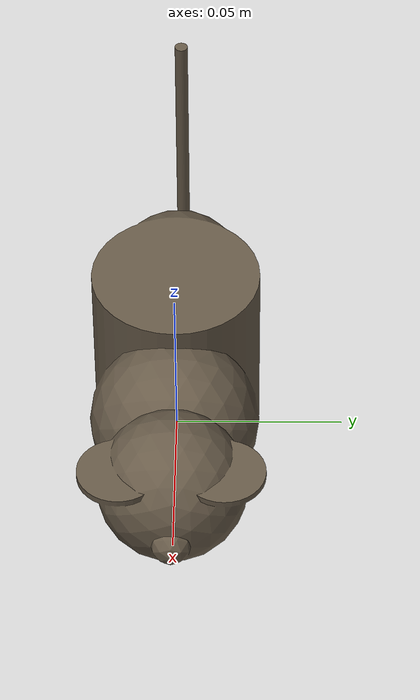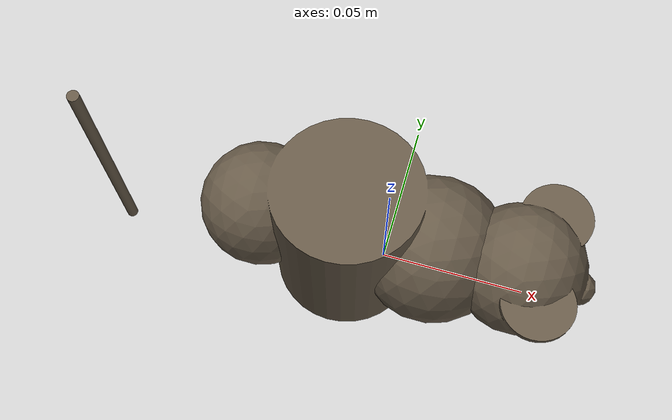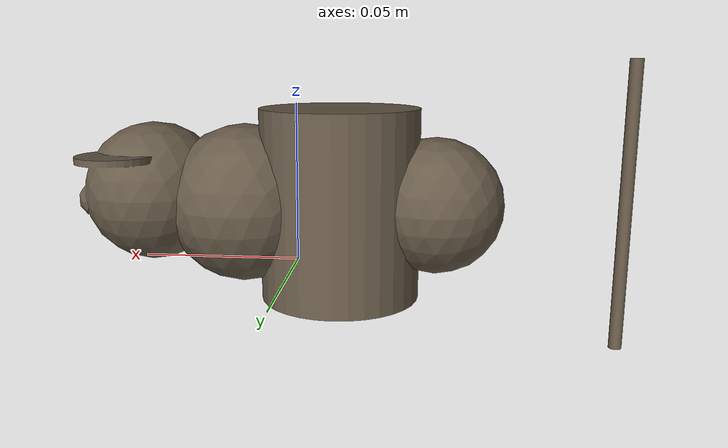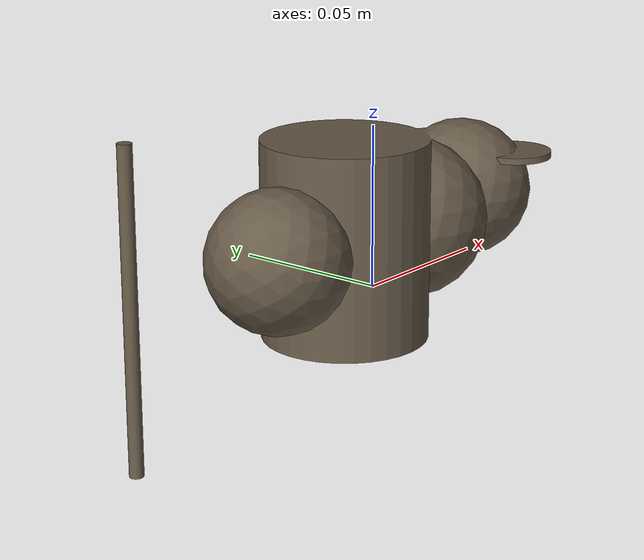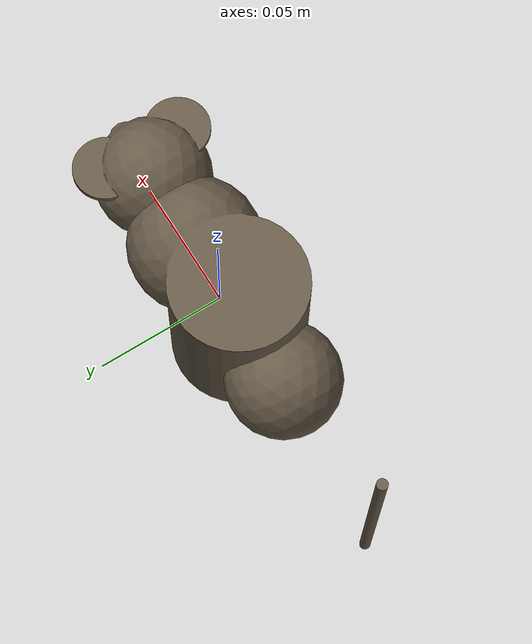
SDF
<?xml version="1.0"?>
<!--
  Mouse (small rodent) — 3D mesh model for basement clutter.
  Approx 17cm long × 5cm wide × 9cm tall (bounding box).
  Mesh generated from trimesh primitives (CC0 equivalent).
-->
<sdf version="1.9">
  <model name="mouse">
    <static>true</static>

    <plugin filename="gz-sim-label-system" name="gz::sim::systems::Label">
      <label>1</label>
    </plugin>

    <link name="body">
      <pose>0 0 0.02 0 0 0</pose>
      <visual name="vis">
        <geometry>
          <mesh>
            <uri>model://mouse/meshes/mouse.dae</uri>
          </mesh>
        </geometry>
        <material>
          <ambient>0.35 0.30 0.25 1</ambient>
          <diffuse>0.40 0.35 0.28 1</diffuse>
        </material>
      </visual>
      <collision name="col">
        <geometry>
          <box><size>0.12 0.05 0.05</size></box>
        </geometry>
      </collision>
    </link>

  </model>
</sdf>
